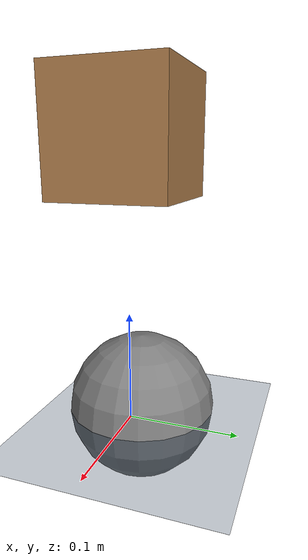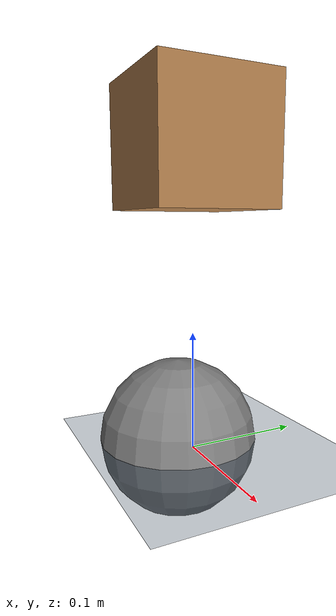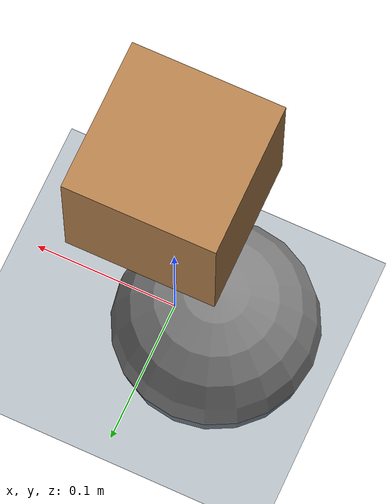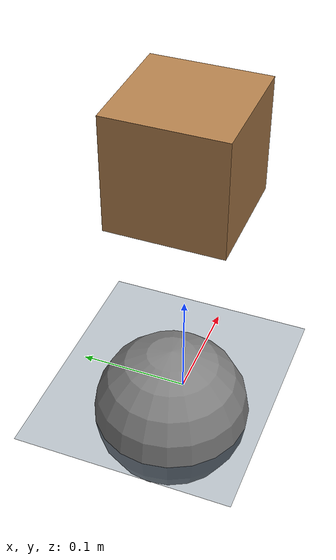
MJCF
<mujoco model="Box2D">
  <custom>
    <numeric name="estimator_configuration_length" data="32" />
  </custom>

  <visual>
    <headlight ambient=".4 .4 .4" diffuse=".8 .8 .8" specular="0.1 0.1 0.1"/>
    <map znear=".01"/>
    <quality shadowsize="2048"/>
    <global offheight="1024" offwidth="1024"/>
  </visual>

  <asset>
    <texture name="skybox" type="skybox" builtin="gradient" rgb1="0 0 0" rgb2="0 0 0"
             width="800" height="800" mark="random" markrgb="0 0 0"/>
  </asset>

  <asset>
      <texture name="grid" type="2d" builtin="checker" rgb1=".1 .2 .3" rgb2=".2 .3 .4" width="300" height="300" mark="edge" markrgb=".2 .3 .4"/>
      <material name="grid" texture="grid" texrepeat="1 1" texuniform="true" reflectance=".2"/>
      <material name="self" rgba=".7 .5 .3 1"/>
      <material name="self_default" rgba=".7 .5 .3 1"/>
      <material name="self_highlight" rgba="0 .5 .3 1"/>
      <material name="effector" rgba=".7 .4 .2 1"/>
      <material name="effector_default" rgba=".7 .4 .2 1"/>
      <material name="effector_highlight" rgba="0 .5 .3 1"/>
      <material name="decoration" rgba=".3 .5 .7 1"/>
      <material name="eye" rgba="0 .2 1 1"/>
      <material name="target" rgba="0 1 0 0.5"/>
      <material name="target_default" rgba=".6 .3 .3 1"/>
      <material name="target_highlight" rgba=".6 .3 .3 .4"/>
      <material name="site" rgba=".5 .5 .5 .3"/>
  </asset>

  <option timestep="0.005"/>
  <default>
    <geom solimp="0 0.95 0.001"/>
  </default>

  <worldbody>
    <light name="light" pos="0 0 1"/>
    <geom name="ground" type="plane" pos="0 0 0" size=".3 .3 .1" material="grid"/>
    <geom size=".07" pos="-.03 0 0"/>
    <body name="pointmass" pos="0 0 .25">
      <joint name="root_x" type="slide"  pos="0 0 0" axis="1 0 0" />
      <joint name="root_z" type="slide"  pos="0 0 0" axis="0 0 1" />
      <joint name="rotation" type="hinge" pos="0 0 0" axis="0 1 0" />
      <geom name="pointmass" type="box" size=".05 .05 .05" material="self" mass="1.0"/>
    </body>
    <camera pos="0.096 -0.599 0.286" xyaxes="1.000 0.003 -0.000 -0.001 0.188 0.982"/>
  </worldbody>

  <actuator>
    <motor name="x_motor" joint="root_x" gear="1" />
    <motor name="z_motor" joint="root_z" gear="1" />
    <motor name="rotation_motor" joint="rotation" gear="1"/>
  </actuator>

  <sensor>
    <jointpos name="joint_x" joint="root_x" />
    <jointpos name="joint_z" joint="root_z" />
    <jointpos name="joint_r" joint="rotation" />
    <jointvel name="vel_x" joint="root_x" />
    <jointvel name="vel_z" joint="root_z" />
    <jointvel name="vel_r" joint="rotation" />
  </sensor>
</mujoco>
